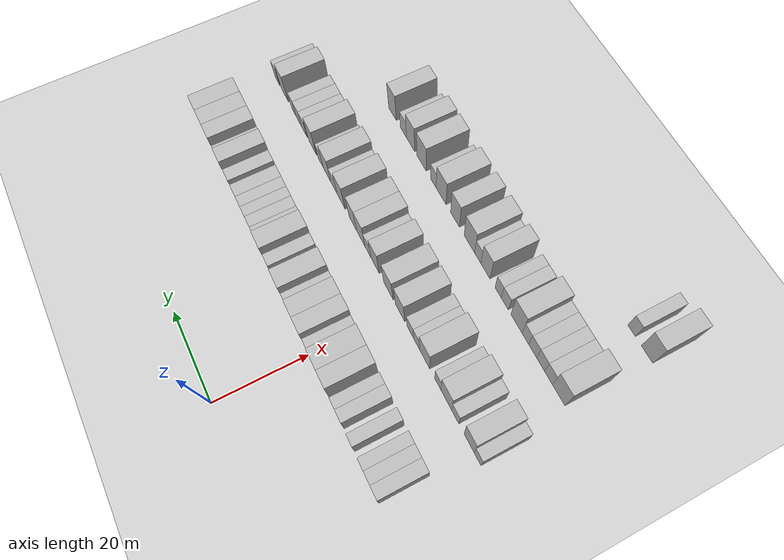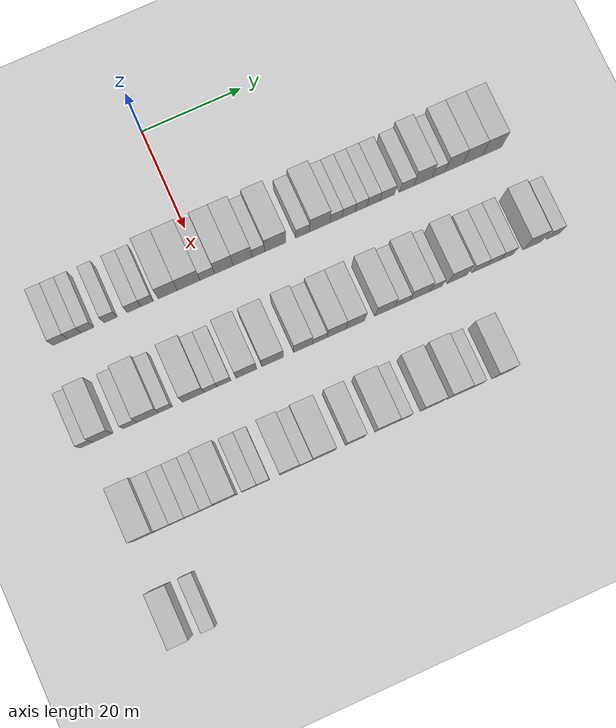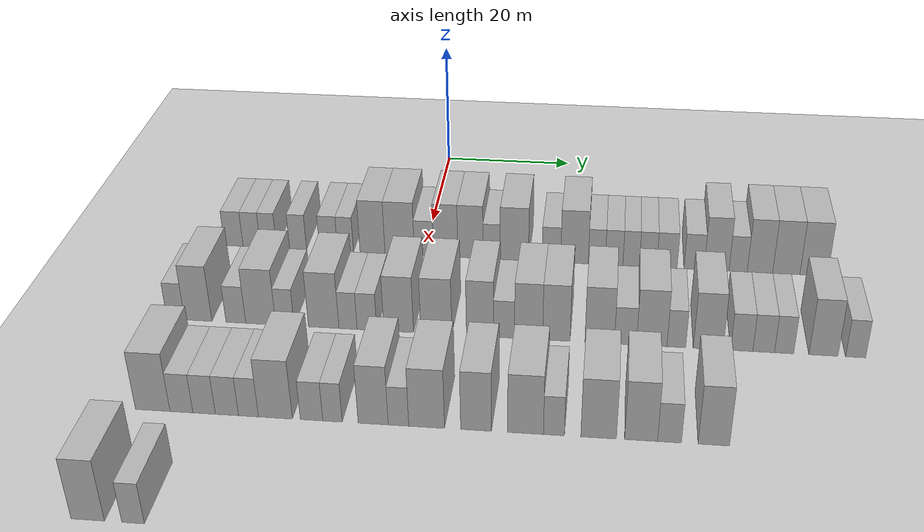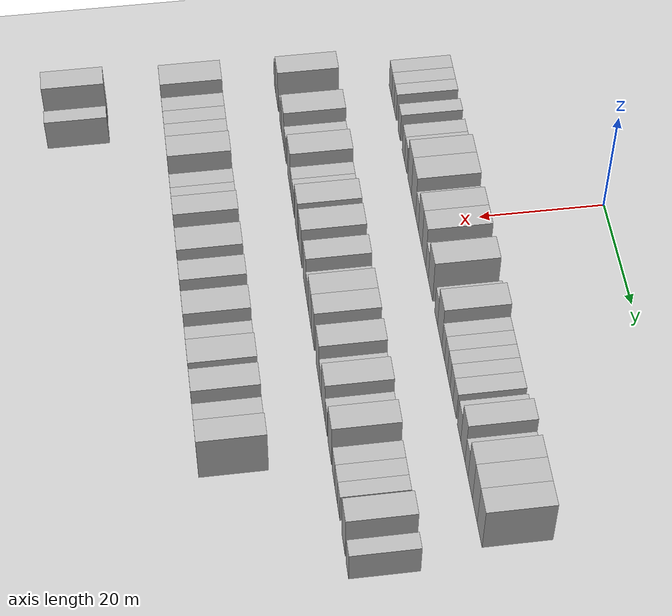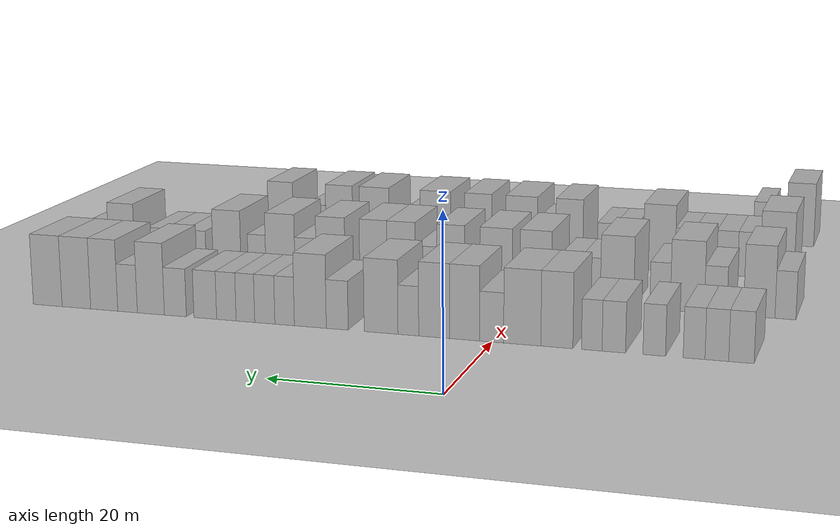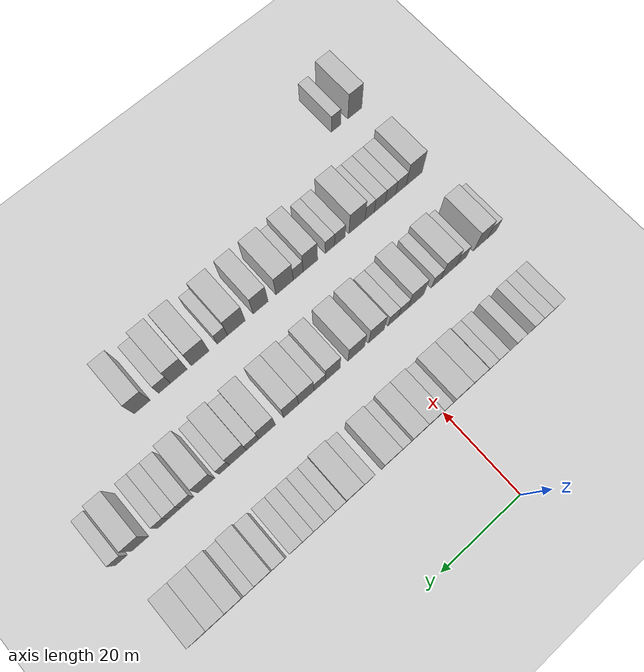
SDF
<sdf version="1.6">
 <world name="default">
  <include><name>ground_plane_1</name><uri>model://HANNAS_ground_plane</uri></include>
  <model name="building_84">
   <static>1</static>
   <pose>25.0000 -28.8090 0 0.000000 0.000000 0.000000</pose>
   <link name="link">
    <pose>0 0 3.00 0 0 0</pose>
    <collision name="collision"><geometry><box><size>10.0000 2.8330 6.0000</size></box></geometry></collision>
    <visual name="visual">
     <cast_shadows>0</cast_shadows>
     <geometry><box><size>10.0000 2.8330 6.0000</size></box></geometry>
     <material>
      <script>
       <uri>model://HANNAS_wall/materials/scripts</uri>
       <uri>model://HANNAS_wall/materials/textures</uri>
       <name>vrc/HANNAS_wall</name>
      </script>
     </material>
    </visual>
   </link>
  </model>
  <model name="building_85">
   <static>1</static>
   <pose>25.0000 -26.0615 0 0.000000 0.000000 0.000000</pose>
   <link name="link">
    <pose>0 0 3.00 0 0 0</pose>
    <collision name="collision"><geometry><box><size>10.0000 2.6622 6.0000</size></box></geometry></collision>
    <visual name="visual">
     <cast_shadows>0</cast_shadows>
     <geometry><box><size>10.0000 2.6622 6.0000</size></box></geometry>
     <material>
      <script>
       <uri>model://HANNAS_wall/materials/scripts</uri>
       <uri>model://HANNAS_wall/materials/textures</uri>
       <name>vrc/HANNAS_wall</name>
      </script>
     </material>
    </visual>
   </link>
  </model>
  <model name="building_86">
   <static>1</static>
   <pose>25.0000 -23.4955 0 0.000000 0.000000 0.000000</pose>
   <link name="link">
    <pose>0 0 3.00 0 0 0</pose>
    <collision name="collision"><geometry><box><size>10.0000 2.4699 6.0000</size></box></geometry></collision>
    <visual name="visual">
     <cast_shadows>0</cast_shadows>
     <geometry><box><size>10.0000 2.4699 6.0000</size></box></geometry>
     <material>
      <script>
       <uri>model://HANNAS_wall/materials/scripts</uri>
       <uri>model://HANNAS_wall/materials/textures</uri>
       <name>vrc/HANNAS_wall</name>
      </script>
     </material>
    </visual>
   </link>
  </model>
  <model name="building_87">
   <static>1</static>
   <pose>25.0000 -18.9709 0 0.000000 0.000000 0.000000</pose>
   <link name="link">
    <pose>0 0 3.00 0 0 0</pose>
    <collision name="collision"><geometry><box><size>10.0000 2.5793 6.0000</size></box></geometry></collision>
    <visual name="visual">
     <cast_shadows>0</cast_shadows>
     <geometry><box><size>10.0000 2.5793 6.0000</size></box></geometry>
     <material>
      <script>
       <uri>model://HANNAS_wall/materials/scripts</uri>
       <uri>model://HANNAS_wall/materials/textures</uri>
       <name>vrc/HANNAS_wall</name>
      </script>
     </material>
    </visual>
   </link>
  </model>
  <model name="building_88">
   <static>1</static>
   <pose>25.0000 -14.3257 0 0.000000 0.000000 0.000000</pose>
   <link name="link">
    <pose>0 0 3.00 0 0 0</pose>
    <collision name="collision"><geometry><box><size>10.0000 2.7111 6.0000</size></box></geometry></collision>
    <visual name="visual">
     <cast_shadows>0</cast_shadows>
     <geometry><box><size>10.0000 2.7111 6.0000</size></box></geometry>
     <material>
      <script>
       <uri>model://HANNAS_wall/materials/scripts</uri>
       <uri>model://HANNAS_wall/materials/textures</uri>
       <name>vrc/HANNAS_wall</name>
      </script>
     </material>
    </visual>
   </link>
  </model>
  <model name="building_89">
   <static>1</static>
   <pose>25.0000 -11.7657 0 0.000000 0.000000 0.000000</pose>
   <link name="link">
    <pose>0 0 3.00 0 0 0</pose>
    <collision name="collision"><geometry><box><size>10.0000 2.4090 6.0000</size></box></geometry></collision>
    <visual name="visual">
     <cast_shadows>0</cast_shadows>
     <geometry><box><size>10.0000 2.4090 6.0000</size></box></geometry>
     <material>
      <script>
       <uri>model://HANNAS_wall/materials/scripts</uri>
       <uri>model://HANNAS_wall/materials/textures</uri>
       <name>vrc/HANNAS_wall</name>
      </script>
     </material>
    </visual>
   </link>
  </model>
  <model name="building_90">
   <static>1</static>
   <pose>25.0000 -7.6754 0 0.000000 0.000000 0.000000</pose>
   <link name="link">
    <pose>0 0 4.50 0 0 0</pose>
    <collision name="collision"><geometry><box><size>10.0000 3.7716 9.0000</size></box></geometry></collision>
    <visual name="visual">
     <cast_shadows>0</cast_shadows>
     <geometry><box><size>10.0000 3.7716 9.0000</size></box></geometry>
     <material>
      <script>
       <uri>model://HANNAS_wall/materials/scripts</uri>
       <uri>model://HANNAS_wall/materials/textures</uri>
       <name>vrc/HANNAS_wall</name>
      </script>
     </material>
    </visual>
   </link>
  </model>
  <model name="building_91">
   <static>1</static>
   <pose>25.0000 -3.5807 0 0.000000 0.000000 0.000000</pose>
   <link name="link">
    <pose>0 0 4.50 0 0 0</pose>
    <collision name="collision"><geometry><box><size>10.0000 4.4180 9.0000</size></box></geometry></collision>
    <visual name="visual">
     <cast_shadows>0</cast_shadows>
     <geometry><box><size>10.0000 4.4180 9.0000</size></box></geometry>
     <material>
      <script>
       <uri>model://HANNAS_wall/materials/scripts</uri>
       <uri>model://HANNAS_wall/materials/textures</uri>
       <name>vrc/HANNAS_wall</name>
      </script>
     </material>
    </visual>
   </link>
  </model>
  <model name="building_92">
   <static>1</static>
   <pose>25.0000 0.0661 0 0.000000 0.000000 0.000000</pose>
   <link name="link">
    <pose>0 0 3.00 0 0 0</pose>
    <collision name="collision"><geometry><box><size>10.0000 2.8755 6.0000</size></box></geometry></collision>
    <visual name="visual">
     <cast_shadows>0</cast_shadows>
     <geometry><box><size>10.0000 2.8755 6.0000</size></box></geometry>
     <material>
      <script>
       <uri>model://HANNAS_wall/materials/scripts</uri>
       <uri>model://HANNAS_wall/materials/textures</uri>
       <name>vrc/HANNAS_wall</name>
      </script>
     </material>
    </visual>
   </link>
  </model>
  <model name="building_93">
   <static>1</static>
   <pose>25.0000 3.3241 0 0.000000 0.000000 0.000000</pose>
   <link name="link">
    <pose>0 0 4.50 0 0 0</pose>
    <collision name="collision"><geometry><box><size>10.0000 3.6405 9.0000</size></box></geometry></collision>
    <visual name="visual">
     <cast_shadows>0</cast_shadows>
     <geometry><box><size>10.0000 3.6405 9.0000</size></box></geometry>
     <material>
      <script>
       <uri>model://HANNAS_wall/materials/scripts</uri>
       <uri>model://HANNAS_wall/materials/textures</uri>
       <name>vrc/HANNAS_wall</name>
      </script>
     </material>
    </visual>
   </link>
  </model>
  <model name="building_94">
   <static>1</static>
   <pose>25.0000 7.0302 0 0.000000 0.000000 0.000000</pose>
   <link name="link">
    <pose>0 0 4.50 0 0 0</pose>
    <collision name="collision"><geometry><box><size>10.0000 3.7717 9.0000</size></box></geometry></collision>
    <visual name="visual">
     <cast_shadows>0</cast_shadows>
     <geometry><box><size>10.0000 3.7717 9.0000</size></box></geometry>
     <material>
      <script>
       <uri>model://HANNAS_wall/materials/scripts</uri>
       <uri>model://HANNAS_wall/materials/textures</uri>
       <name>vrc/HANNAS_wall</name>
      </script>
     </material>
    </visual>
   </link>
  </model>
  <model name="building_95">
   <static>1</static>
   <pose>25.0000 10.1906 0 0.000000 0.000000 0.000000</pose>
   <link name="link">
    <pose>0 0 3.00 0 0 0</pose>
    <collision name="collision"><geometry><box><size>10.0000 2.5492 6.0000</size></box></geometry></collision>
    <visual name="visual">
     <cast_shadows>0</cast_shadows>
     <geometry><box><size>10.0000 2.5492 6.0000</size></box></geometry>
     <material>
      <script>
       <uri>model://HANNAS_wall/materials/scripts</uri>
       <uri>model://HANNAS_wall/materials/textures</uri>
       <name>vrc/HANNAS_wall</name>
      </script>
     </material>
    </visual>
   </link>
  </model>
  <model name="building_96">
   <static>1</static>
   <pose>25.0000 13.5642 0 0.000000 0.000000 0.000000</pose>
   <link name="link">
    <pose>0 0 4.50 0 0 0</pose>
    <collision name="collision"><geometry><box><size>10.0000 4.1981 9.0000</size></box></geometry></collision>
    <visual name="visual">
     <cast_shadows>0</cast_shadows>
     <geometry><box><size>10.0000 4.1981 9.0000</size></box></geometry>
     <material>
      <script>
       <uri>model://HANNAS_wall/materials/scripts</uri>
       <uri>model://HANNAS_wall/materials/textures</uri>
       <name>vrc/HANNAS_wall</name>
      </script>
     </material>
    </visual>
   </link>
  </model>
  <model name="building_97">
   <static>1</static>
   <pose>25.0000 19.0391 0 0.000000 0.000000 0.000000</pose>
   <link name="link">
    <pose>0 0 3.00 0 0 0</pose>
    <collision name="collision"><geometry><box><size>10.0000 2.7515 6.0000</size></box></geometry></collision>
    <visual name="visual">
     <cast_shadows>0</cast_shadows>
     <geometry><box><size>10.0000 2.7515 6.0000</size></box></geometry>
     <material>
      <script>
       <uri>model://HANNAS_wall/materials/scripts</uri>
       <uri>model://HANNAS_wall/materials/textures</uri>
       <name>vrc/HANNAS_wall</name>
      </script>
     </material>
    </visual>
   </link>
  </model>
  <model name="building_98">
   <static>1</static>
   <pose>25.0000 22.4402 0 0.000000 0.000000 0.000000</pose>
   <link name="link">
    <pose>0 0 4.50 0 0 0</pose>
    <collision name="collision"><geometry><box><size>10.0000 4.0507 9.0000</size></box></geometry></collision>
    <visual name="visual">
     <cast_shadows>0</cast_shadows>
     <geometry><box><size>10.0000 4.0507 9.0000</size></box></geometry>
     <material>
      <script>
       <uri>model://HANNAS_wall/materials/scripts</uri>
       <uri>model://HANNAS_wall/materials/textures</uri>
       <name>vrc/HANNAS_wall</name>
      </script>
     </material>
    </visual>
   </link>
  </model>
  <model name="building_99">
   <static>1</static>
   <pose>25.0000 25.7136 0 0.000000 0.000000 0.000000</pose>
   <link name="link">
    <pose>0 0 3.00 0 0 0</pose>
    <collision name="collision"><geometry><box><size>10.0000 2.4961 6.0000</size></box></geometry></collision>
    <visual name="visual">
     <cast_shadows>0</cast_shadows>
     <geometry><box><size>10.0000 2.4961 6.0000</size></box></geometry>
     <material>
      <script>
       <uri>model://HANNAS_wall/materials/scripts</uri>
       <uri>model://HANNAS_wall/materials/textures</uri>
       <name>vrc/HANNAS_wall</name>
      </script>
     </material>
    </visual>
   </link>
  </model>
  <model name="building_100">
   <static>1</static>
   <pose>25.0000 28.2555 0 0.000000 0.000000 0.000000</pose>
   <link name="link">
    <pose>0 0 3.00 0 0 0</pose>
    <collision name="collision"><geometry><box><size>10.0000 2.5877 6.0000</size></box></geometry></collision>
    <visual name="visual">
     <cast_shadows>0</cast_shadows>
     <geometry><box><size>10.0000 2.5877 6.0000</size></box></geometry>
     <material>
      <script>
       <uri>model://HANNAS_wall/materials/scripts</uri>
       <uri>model://HANNAS_wall/materials/textures</uri>
       <name>vrc/HANNAS_wall</name>
      </script>
     </material>
    </visual>
   </link>
  </model>
  <model name="building_101">
   <static>1</static>
   <pose>25.0000 30.7567 0 0.000000 0.000000 0.000000</pose>
   <link name="link">
    <pose>0 0 3.00 0 0 0</pose>
    <collision name="collision"><geometry><box><size>10.0000 2.4148 6.0000</size></box></geometry></collision>
    <visual name="visual">
     <cast_shadows>0</cast_shadows>
     <geometry><box><size>10.0000 2.4148 6.0000</size></box></geometry>
     <material>
      <script>
       <uri>model://HANNAS_wall/materials/scripts</uri>
       <uri>model://HANNAS_wall/materials/textures</uri>
       <name>vrc/HANNAS_wall</name>
      </script>
     </material>
    </visual>
   </link>
  </model>
  <model name="building_102">
   <static>1</static>
   <pose>25.0000 33.2324 0 0.000000 0.000000 0.000000</pose>
   <link name="link">
    <pose>0 0 3.00 0 0 0</pose>
    <collision name="collision"><geometry><box><size>10.0000 2.5365 6.0000</size></box></geometry></collision>
    <visual name="visual">
     <cast_shadows>0</cast_shadows>
     <geometry><box><size>10.0000 2.5365 6.0000</size></box></geometry>
     <material>
      <script>
       <uri>model://HANNAS_wall/materials/scripts</uri>
       <uri>model://HANNAS_wall/materials/textures</uri>
       <name>vrc/HANNAS_wall</name>
      </script>
     </material>
    </visual>
   </link>
  </model>
  <model name="building_103">
   <static>1</static>
   <pose>25.0000 35.9868 0 0.000000 0.000000 0.000000</pose>
   <link name="link">
    <pose>0 0 3.00 0 0 0</pose>
    <collision name="collision"><geometry><box><size>10.0000 2.9724 6.0000</size></box></geometry></collision>
    <visual name="visual">
     <cast_shadows>0</cast_shadows>
     <geometry><box><size>10.0000 2.9724 6.0000</size></box></geometry>
     <material>
      <script>
       <uri>model://HANNAS_wall/materials/scripts</uri>
       <uri>model://HANNAS_wall/materials/textures</uri>
       <name>vrc/HANNAS_wall</name>
      </script>
     </material>
    </visual>
   </link>
  </model>
  <model name="building_104">
   <static>1</static>
   <pose>25.0000 39.9275 0 0.000000 0.000000 0.000000</pose>
   <link name="link">
    <pose>0 0 3.00 0 0 0</pose>
    <collision name="collision"><geometry><box><size>10.0000 2.9089 6.0000</size></box></geometry></collision>
    <visual name="visual">
     <cast_shadows>0</cast_shadows>
     <geometry><box><size>10.0000 2.9089 6.0000</size></box></geometry>
     <material>
      <script>
       <uri>model://HANNAS_wall/materials/scripts</uri>
       <uri>model://HANNAS_wall/materials/textures</uri>
       <name>vrc/HANNAS_wall</name>
      </script>
     </material>
    </visual>
   </link>
  </model>
  <model name="building_105">
   <static>1</static>
   <pose>25.0000 43.1871 0 0.000000 0.000000 0.000000</pose>
   <link name="link">
    <pose>0 0 4.50 0 0 0</pose>
    <collision name="collision"><geometry><box><size>10.0000 3.6104 9.0000</size></box></geometry></collision>
    <visual name="visual">
     <cast_shadows>0</cast_shadows>
     <geometry><box><size>10.0000 3.6104 9.0000</size></box></geometry>
     <material>
      <script>
       <uri>model://HANNAS_wall/materials/scripts</uri>
       <uri>model://HANNAS_wall/materials/textures</uri>
       <name>vrc/HANNAS_wall</name>
      </script>
     </material>
    </visual>
   </link>
  </model>
  <model name="building_106">
   <static>1</static>
   <pose>25.0000 46.3086 0 0.000000 0.000000 0.000000</pose>
   <link name="link">
    <pose>0 0 3.00 0 0 0</pose>
    <collision name="collision"><geometry><box><size>10.0000 2.6326 6.0000</size></box></geometry></collision>
    <visual name="visual">
     <cast_shadows>0</cast_shadows>
     <geometry><box><size>10.0000 2.6326 6.0000</size></box></geometry>
     <material>
      <script>
       <uri>model://HANNAS_wall/materials/scripts</uri>
       <uri>model://HANNAS_wall/materials/textures</uri>
       <name>vrc/HANNAS_wall</name>
      </script>
     </material>
    </visual>
   </link>
  </model>
  <model name="building_107">
   <static>1</static>
   <pose>25.0000 49.4551 0 0.000000 0.000000 0.000000</pose>
   <link name="link">
    <pose>0 0 4.50 0 0 0</pose>
    <collision name="collision"><geometry><box><size>10.0000 3.6605 9.0000</size></box></geometry></collision>
    <visual name="visual">
     <cast_shadows>0</cast_shadows>
     <geometry><box><size>10.0000 3.6605 9.0000</size></box></geometry>
     <material>
      <script>
       <uri>model://HANNAS_wall/materials/scripts</uri>
       <uri>model://HANNAS_wall/materials/textures</uri>
       <name>vrc/HANNAS_wall</name>
      </script>
     </material>
    </visual>
   </link>
  </model>
  <model name="building_108">
   <static>1</static>
   <pose>25.0000 53.2404 0 0.000000 0.000000 0.000000</pose>
   <link name="link">
    <pose>0 0 4.50 0 0 0</pose>
    <collision name="collision"><geometry><box><size>10.0000 3.9102 9.0000</size></box></geometry></collision>
    <visual name="visual">
     <cast_shadows>0</cast_shadows>
     <geometry><box><size>10.0000 3.9102 9.0000</size></box></geometry>
     <material>
      <script>
       <uri>model://HANNAS_wall/materials/scripts</uri>
       <uri>model://HANNAS_wall/materials/textures</uri>
       <name>vrc/HANNAS_wall</name>
      </script>
     </material>
    </visual>
   </link>
  </model>
  <model name="building_109">
   <static>1</static>
   <pose>25.0000 57.1777 0 0.000000 0.000000 0.000000</pose>
   <link name="link">
    <pose>0 0 4.50 0 0 0</pose>
    <collision name="collision"><geometry><box><size>10.0000 3.9643 9.0000</size></box></geometry></collision>
    <visual name="visual">
     <cast_shadows>0</cast_shadows>
     <geometry><box><size>10.0000 3.9643 9.0000</size></box></geometry>
     <material>
      <script>
       <uri>model://HANNAS_wall/materials/scripts</uri>
       <uri>model://HANNAS_wall/materials/textures</uri>
       <name>vrc/HANNAS_wall</name>
      </script>
     </material>
    </visual>
   </link>
  </model>
  <model name="building_254">
   <static>1</static>
   <pose>44.0000 -31.6914 0 0.000000 0.000000 0.000000</pose>
   <link name="link">
    <pose>0 0 3.00 0 0 0</pose>
    <collision name="collision"><geometry><box><size>10.0000 2.5079 6.0000</size></box></geometry></collision>
    <visual name="visual">
     <cast_shadows>0</cast_shadows>
     <geometry><box><size>10.0000 2.5079 6.0000</size></box></geometry>
     <material>
      <script>
       <uri>model://HANNAS_wall/materials/scripts</uri>
       <uri>model://HANNAS_wall/materials/textures</uri>
       <name>vrc/HANNAS_wall</name>
      </script>
     </material>
    </visual>
   </link>
  </model>
  <model name="building_255">
   <static>1</static>
   <pose>44.0000 -28.5238 0 0.000000 0.000000 0.000000</pose>
   <link name="link">
    <pose>0 0 4.50 0 0 0</pose>
    <collision name="collision"><geometry><box><size>10.0000 3.8273 9.0000</size></box></geometry></collision>
    <visual name="visual">
     <cast_shadows>0</cast_shadows>
     <geometry><box><size>10.0000 3.8273 9.0000</size></box></geometry>
     <material>
      <script>
       <uri>model://HANNAS_wall/materials/scripts</uri>
       <uri>model://HANNAS_wall/materials/textures</uri>
       <name>vrc/HANNAS_wall</name>
      </script>
     </material>
    </visual>
   </link>
  </model>
  <model name="building_256">
   <static>1</static>
   <pose>44.0000 -23.2262 0 0.000000 0.000000 0.000000</pose>
   <link name="link">
    <pose>0 0 3.00 0 0 0</pose>
    <collision name="collision"><geometry><box><size>10.0000 2.7680 6.0000</size></box></geometry></collision>
    <visual name="visual">
     <cast_shadows>0</cast_shadows>
     <geometry><box><size>10.0000 2.7680 6.0000</size></box></geometry>
     <material>
      <script>
       <uri>model://HANNAS_wall/materials/scripts</uri>
       <uri>model://HANNAS_wall/materials/textures</uri>
       <name>vrc/HANNAS_wall</name>
      </script>
     </material>
    </visual>
   </link>
  </model>
  <model name="building_257">
   <static>1</static>
   <pose>44.0000 -19.7405 0 0.000000 0.000000 0.000000</pose>
   <link name="link">
    <pose>0 0 4.50 0 0 0</pose>
    <collision name="collision"><geometry><box><size>10.0000 4.2033 9.0000</size></box></geometry></collision>
    <visual name="visual">
     <cast_shadows>0</cast_shadows>
     <geometry><box><size>10.0000 4.2033 9.0000</size></box></geometry>
     <material>
      <script>
       <uri>model://HANNAS_wall/materials/scripts</uri>
       <uri>model://HANNAS_wall/materials/textures</uri>
       <name>vrc/HANNAS_wall</name>
      </script>
     </material>
    </visual>
   </link>
  </model>
  <model name="building_258">
   <static>1</static>
   <pose>44.0000 -16.3598 0 0.000000 0.000000 0.000000</pose>
   <link name="link">
    <pose>0 0 3.00 0 0 0</pose>
    <collision name="collision"><geometry><box><size>10.0000 2.5581 6.0000</size></box></geometry></collision>
    <visual name="visual">
     <cast_shadows>0</cast_shadows>
     <geometry><box><size>10.0000 2.5581 6.0000</size></box></geometry>
     <material>
      <script>
       <uri>model://HANNAS_wall/materials/scripts</uri>
       <uri>model://HANNAS_wall/materials/textures</uri>
       <name>vrc/HANNAS_wall</name>
      </script>
     </material>
    </visual>
   </link>
  </model>
  <model name="building_259">
   <static>1</static>
   <pose>44.0000 -10.9710 0 0.000000 0.000000 0.000000</pose>
   <link name="link">
    <pose>0 0 4.50 0 0 0</pose>
    <collision name="collision"><geometry><box><size>10.0000 4.2196 9.0000</size></box></geometry></collision>
    <visual name="visual">
     <cast_shadows>0</cast_shadows>
     <geometry><box><size>10.0000 4.2196 9.0000</size></box></geometry>
     <material>
      <script>
       <uri>model://HANNAS_wall/materials/scripts</uri>
       <uri>model://HANNAS_wall/materials/textures</uri>
       <name>vrc/HANNAS_wall</name>
      </script>
     </material>
    </visual>
   </link>
  </model>
  <model name="building_260">
   <static>1</static>
   <pose>44.0000 -7.6027 0 0.000000 0.000000 0.000000</pose>
   <link name="link">
    <pose>0 0 3.00 0 0 0</pose>
    <collision name="collision"><geometry><box><size>10.0000 2.5170 6.0000</size></box></geometry></collision>
    <visual name="visual">
     <cast_shadows>0</cast_shadows>
     <geometry><box><size>10.0000 2.5170 6.0000</size></box></geometry>
     <material>
      <script>
       <uri>model://HANNAS_wall/materials/scripts</uri>
       <uri>model://HANNAS_wall/materials/textures</uri>
       <name>vrc/HANNAS_wall</name>
      </script>
     </material>
    </visual>
   </link>
  </model>
  <model name="building_261">
   <static>1</static>
   <pose>44.0000 -4.9911 0 0.000000 0.000000 0.000000</pose>
   <link name="link">
    <pose>0 0 3.00 0 0 0</pose>
    <collision name="collision"><geometry><box><size>10.0000 2.7061 6.0000</size></box></geometry></collision>
    <visual name="visual">
     <cast_shadows>0</cast_shadows>
     <geometry><box><size>10.0000 2.7061 6.0000</size></box></geometry>
     <material>
      <script>
       <uri>model://HANNAS_wall/materials/scripts</uri>
       <uri>model://HANNAS_wall/materials/textures</uri>
       <name>vrc/HANNAS_wall</name>
      </script>
     </material>
    </visual>
   </link>
  </model>
  <model name="building_262">
   <static>1</static>
   <pose>44.0000 -0.6071 0 0.000000 0.000000 0.000000</pose>
   <link name="link">
    <pose>0 0 4.50 0 0 0</pose>
    <collision name="collision"><geometry><box><size>10.0000 4.0620 9.0000</size></box></geometry></collision>
    <visual name="visual">
     <cast_shadows>0</cast_shadows>
     <geometry><box><size>10.0000 4.0620 9.0000</size></box></geometry>
     <material>
      <script>
       <uri>model://HANNAS_wall/materials/scripts</uri>
       <uri>model://HANNAS_wall/materials/textures</uri>
       <name>vrc/HANNAS_wall</name>
      </script>
     </material>
    </visual>
   </link>
  </model>
  <model name="building_263">
   <static>1</static>
   <pose>44.0000 4.5474 0 0.000000 0.000000 0.000000</pose>
   <link name="link">
    <pose>0 0 4.50 0 0 0</pose>
    <collision name="collision"><geometry><box><size>10.0000 4.2470 9.0000</size></box></geometry></collision>
    <visual name="visual">
     <cast_shadows>0</cast_shadows>
     <geometry><box><size>10.0000 4.2470 9.0000</size></box></geometry>
     <material>
      <script>
       <uri>model://HANNAS_wall/materials/scripts</uri>
       <uri>model://HANNAS_wall/materials/textures</uri>
       <name>vrc/HANNAS_wall</name>
      </script>
     </material>
    </visual>
   </link>
  </model>
  <model name="building_264">
   <static>1</static>
   <pose>44.0000 10.5093 0 0.000000 0.000000 0.000000</pose>
   <link name="link">
    <pose>0 0 4.50 0 0 0</pose>
    <collision name="collision"><geometry><box><size>10.0000 3.6768 9.0000</size></box></geometry></collision>
    <visual name="visual">
     <cast_shadows>0</cast_shadows>
     <geometry><box><size>10.0000 3.6768 9.0000</size></box></geometry>
     <material>
      <script>
       <uri>model://HANNAS_wall/materials/scripts</uri>
       <uri>model://HANNAS_wall/materials/textures</uri>
       <name>vrc/HANNAS_wall</name>
      </script>
     </material>
    </visual>
   </link>
  </model>
  <model name="building_265">
   <static>1</static>
   <pose>44.0000 13.7804 0 0.000000 0.000000 0.000000</pose>
   <link name="link">
    <pose>0 0 3.00 0 0 0</pose>
    <collision name="collision"><geometry><box><size>10.0000 2.8653 6.0000</size></box></geometry></collision>
    <visual name="visual">
     <cast_shadows>0</cast_shadows>
     <geometry><box><size>10.0000 2.8653 6.0000</size></box></geometry>
     <material>
      <script>
       <uri>model://HANNAS_wall/materials/scripts</uri>
       <uri>model://HANNAS_wall/materials/textures</uri>
       <name>vrc/HANNAS_wall</name>
      </script>
     </material>
    </visual>
   </link>
  </model>
  <model name="building_266">
   <static>1</static>
   <pose>44.0000 17.1089 0 0.000000 0.000000 0.000000</pose>
   <link name="link">
    <pose>0 0 4.50 0 0 0</pose>
    <collision name="collision"><geometry><box><size>10.0000 3.7916 9.0000</size></box></geometry></collision>
    <visual name="visual">
     <cast_shadows>0</cast_shadows>
     <geometry><box><size>10.0000 3.7916 9.0000</size></box></geometry>
     <material>
      <script>
       <uri>model://HANNAS_wall/materials/scripts</uri>
       <uri>model://HANNAS_wall/materials/textures</uri>
       <name>vrc/HANNAS_wall</name>
      </script>
     </material>
    </visual>
   </link>
  </model>
  <model name="building_267">
   <static>1</static>
   <pose>44.0000 20.8496 0 0.000000 0.000000 0.000000</pose>
   <link name="link">
    <pose>0 0 4.50 0 0 0</pose>
    <collision name="collision"><geometry><box><size>10.0000 3.6898 9.0000</size></box></geometry></collision>
    <visual name="visual">
     <cast_shadows>0</cast_shadows>
     <geometry><box><size>10.0000 3.6898 9.0000</size></box></geometry>
     <material>
      <script>
       <uri>model://HANNAS_wall/materials/scripts</uri>
       <uri>model://HANNAS_wall/materials/textures</uri>
       <name>vrc/HANNAS_wall</name>
      </script>
     </material>
    </visual>
   </link>
  </model>
  <model name="building_268">
   <static>1</static>
   <pose>44.0000 26.6728 0 0.000000 0.000000 0.000000</pose>
   <link name="link">
    <pose>0 0 4.50 0 0 0</pose>
    <collision name="collision"><geometry><box><size>10.0000 3.9567 9.0000</size></box></geometry></collision>
    <visual name="visual">
     <cast_shadows>0</cast_shadows>
     <geometry><box><size>10.0000 3.9567 9.0000</size></box></geometry>
     <material>
      <script>
       <uri>model://HANNAS_wall/materials/scripts</uri>
       <uri>model://HANNAS_wall/materials/textures</uri>
       <name>vrc/HANNAS_wall</name>
      </script>
     </material>
    </visual>
   </link>
  </model>
  <model name="building_269">
   <static>1</static>
   <pose>44.0000 30.1289 0 0.000000 0.000000 0.000000</pose>
   <link name="link">
    <pose>0 0 3.00 0 0 0</pose>
    <collision name="collision"><geometry><box><size>10.0000 2.9555 6.0000</size></box></geometry></collision>
    <visual name="visual">
     <cast_shadows>0</cast_shadows>
     <geometry><box><size>10.0000 2.9555 6.0000</size></box></geometry>
     <material>
      <script>
       <uri>model://HANNAS_wall/materials/scripts</uri>
       <uri>model://HANNAS_wall/materials/textures</uri>
       <name>vrc/HANNAS_wall</name>
      </script>
     </material>
    </visual>
   </link>
  </model>
  <model name="building_270">
   <static>1</static>
   <pose>44.0000 33.6361 0 0.000000 0.000000 0.000000</pose>
   <link name="link">
    <pose>0 0 4.50 0 0 0</pose>
    <collision name="collision"><geometry><box><size>10.0000 4.0588 9.0000</size></box></geometry></collision>
    <visual name="visual">
     <cast_shadows>0</cast_shadows>
     <geometry><box><size>10.0000 4.0588 9.0000</size></box></geometry>
     <material>
      <script>
       <uri>model://HANNAS_wall/materials/scripts</uri>
       <uri>model://HANNAS_wall/materials/textures</uri>
       <name>vrc/HANNAS_wall</name>
      </script>
     </material>
    </visual>
   </link>
  </model>
  <model name="building_271">
   <static>1</static>
   <pose>44.0000 36.9097 0 0.000000 0.000000 0.000000</pose>
   <link name="link">
    <pose>0 0 3.00 0 0 0</pose>
    <collision name="collision"><geometry><box><size>10.0000 2.4883 6.0000</size></box></geometry></collision>
    <visual name="visual">
     <cast_shadows>0</cast_shadows>
     <geometry><box><size>10.0000 2.4883 6.0000</size></box></geometry>
     <material>
      <script>
       <uri>model://HANNAS_wall/materials/scripts</uri>
       <uri>model://HANNAS_wall/materials/textures</uri>
       <name>vrc/HANNAS_wall</name>
      </script>
     </material>
    </visual>
   </link>
  </model>
  <model name="building_272">
   <static>1</static>
   <pose>44.0000 41.1242 0 0.000000 0.000000 0.000000</pose>
   <link name="link">
    <pose>0 0 4.50 0 0 0</pose>
    <collision name="collision"><geometry><box><size>10.0000 3.9406 9.0000</size></box></geometry></collision>
    <visual name="visual">
     <cast_shadows>0</cast_shadows>
     <geometry><box><size>10.0000 3.9406 9.0000</size></box></geometry>
     <material>
      <script>
       <uri>model://HANNAS_wall/materials/scripts</uri>
       <uri>model://HANNAS_wall/materials/textures</uri>
       <name>vrc/HANNAS_wall</name>
      </script>
     </material>
    </visual>
   </link>
  </model>
  <model name="building_273">
   <static>1</static>
   <pose>44.0000 45.5580 0 0.000000 0.000000 0.000000</pose>
   <link name="link">
    <pose>0 0 3.00 0 0 0</pose>
    <collision name="collision"><geometry><box><size>10.0000 2.9269 6.0000</size></box></geometry></collision>
    <visual name="visual">
     <cast_shadows>0</cast_shadows>
     <geometry><box><size>10.0000 2.9269 6.0000</size></box></geometry>
     <material>
      <script>
       <uri>model://HANNAS_wall/materials/scripts</uri>
       <uri>model://HANNAS_wall/materials/textures</uri>
       <name>vrc/HANNAS_wall</name>
      </script>
     </material>
    </visual>
   </link>
  </model>
  <model name="building_274">
   <static>1</static>
   <pose>44.0000 48.4474 0 0.000000 0.000000 0.000000</pose>
   <link name="link">
    <pose>0 0 3.00 0 0 0</pose>
    <collision name="collision"><geometry><box><size>10.0000 2.8519 6.0000</size></box></geometry></collision>
    <visual name="visual">
     <cast_shadows>0</cast_shadows>
     <geometry><box><size>10.0000 2.8519 6.0000</size></box></geometry>
     <material>
      <script>
       <uri>model://HANNAS_wall/materials/scripts</uri>
       <uri>model://HANNAS_wall/materials/textures</uri>
       <name>vrc/HANNAS_wall</name>
      </script>
     </material>
    </visual>
   </link>
  </model>
  <model name="building_275">
   <static>1</static>
   <pose>44.0000 51.1332 0 0.000000 0.000000 0.000000</pose>
   <link name="link">
    <pose>0 0 3.00 0 0 0</pose>
    <collision name="collision"><geometry><box><size>10.0000 2.5199 6.0000</size></box></geometry></collision>
    <visual name="visual">
     <cast_shadows>0</cast_shadows>
     <geometry><box><size>10.0000 2.5199 6.0000</size></box></geometry>
     <material>
      <script>
       <uri>model://HANNAS_wall/materials/scripts</uri>
       <uri>model://HANNAS_wall/materials/textures</uri>
       <name>vrc/HANNAS_wall</name>
      </script>
     </material>
    </visual>
   </link>
  </model>
  <model name="building_276">
   <static>1</static>
   <pose>44.0000 56.2849 0 0.000000 0.000000 0.000000</pose>
   <link name="link">
    <pose>0 0 4.50 0 0 0</pose>
    <collision name="collision"><geometry><box><size>10.0000 3.7835 9.0000</size></box></geometry></collision>
    <visual name="visual">
     <cast_shadows>0</cast_shadows>
     <geometry><box><size>10.0000 3.7835 9.0000</size></box></geometry>
     <material>
      <script>
       <uri>model://HANNAS_wall/materials/scripts</uri>
       <uri>model://HANNAS_wall/materials/textures</uri>
       <name>vrc/HANNAS_wall</name>
      </script>
     </material>
    </visual>
   </link>
  </model>
  <model name="building_277">
   <static>1</static>
   <pose>44.0000 60.4785 0 0.000000 0.000000 0.000000</pose>
   <link name="link">
    <pose>0 0 3.00 0 0 0</pose>
    <collision name="collision"><geometry><box><size>10.0000 2.6036 6.0000</size></box></geometry></collision>
    <visual name="visual">
     <cast_shadows>0</cast_shadows>
     <geometry><box><size>10.0000 2.6036 6.0000</size></box></geometry>
     <material>
      <script>
       <uri>model://HANNAS_wall/materials/scripts</uri>
       <uri>model://HANNAS_wall/materials/textures</uri>
       <name>vrc/HANNAS_wall</name>
      </script>
     </material>
    </visual>
   </link>
  </model>
  <model name="building_436">
   <static>1</static>
   <pose>63.0000 -28.5884 0 0.000000 0.000000 0.000000</pose>
   <link name="link">
    <pose>0 0 4.50 0 0 0</pose>
    <collision name="collision"><geometry><box><size>10.0000 4.4267 9.0000</size></box></geometry></collision>
    <visual name="visual">
     <cast_shadows>0</cast_shadows>
     <geometry><box><size>10.0000 4.4267 9.0000</size></box></geometry>
     <material>
      <script>
       <uri>model://HANNAS_wall/materials/scripts</uri>
       <uri>model://HANNAS_wall/materials/textures</uri>
       <name>vrc/HANNAS_wall</name>
      </script>
     </material>
    </visual>
   </link>
  </model>
  <model name="building_437">
   <static>1</static>
   <pose>63.0000 -24.9078 0 0.000000 0.000000 0.000000</pose>
   <link name="link">
    <pose>0 0 3.00 0 0 0</pose>
    <collision name="collision"><geometry><box><size>10.0000 2.9345 6.0000</size></box></geometry></collision>
    <visual name="visual">
     <cast_shadows>0</cast_shadows>
     <geometry><box><size>10.0000 2.9345 6.0000</size></box></geometry>
     <material>
      <script>
       <uri>model://HANNAS_wall/materials/scripts</uri>
       <uri>model://HANNAS_wall/materials/textures</uri>
       <name>vrc/HANNAS_wall</name>
      </script>
     </material>
    </visual>
   </link>
  </model>
  <model name="building_438">
   <static>1</static>
   <pose>63.0000 -22.0087 0 0.000000 0.000000 0.000000</pose>
   <link name="link">
    <pose>0 0 3.00 0 0 0</pose>
    <collision name="collision"><geometry><box><size>10.0000 2.8638 6.0000</size></box></geometry></collision>
    <visual name="visual">
     <cast_shadows>0</cast_shadows>
     <geometry><box><size>10.0000 2.8638 6.0000</size></box></geometry>
     <material>
      <script>
       <uri>model://HANNAS_wall/materials/scripts</uri>
       <uri>model://HANNAS_wall/materials/textures</uri>
       <name>vrc/HANNAS_wall</name>
      </script>
     </material>
    </visual>
   </link>
  </model>
  <model name="building_439">
   <static>1</static>
   <pose>63.0000 -19.1057 0 0.000000 0.000000 0.000000</pose>
   <link name="link">
    <pose>0 0 3.00 0 0 0</pose>
    <collision name="collision"><geometry><box><size>10.0000 2.9422 6.0000</size></box></geometry></collision>
    <visual name="visual">
     <cast_shadows>0</cast_shadows>
     <geometry><box><size>10.0000 2.9422 6.0000</size></box></geometry>
     <material>
      <script>
       <uri>model://HANNAS_wall/materials/scripts</uri>
       <uri>model://HANNAS_wall/materials/textures</uri>
       <name>vrc/HANNAS_wall</name>
      </script>
     </material>
    </visual>
   </link>
  </model>
  <model name="building_440">
   <static>1</static>
   <pose>63.0000 -16.3711 0 0.000000 0.000000 0.000000</pose>
   <link name="link">
    <pose>0 0 3.00 0 0 0</pose>
    <collision name="collision"><geometry><box><size>10.0000 2.5270 6.0000</size></box></geometry></collision>
    <visual name="visual">
     <cast_shadows>0</cast_shadows>
     <geometry><box><size>10.0000 2.5270 6.0000</size></box></geometry>
     <material>
      <script>
       <uri>model://HANNAS_wall/materials/scripts</uri>
       <uri>model://HANNAS_wall/materials/textures</uri>
       <name>vrc/HANNAS_wall</name>
      </script>
     </material>
    </visual>
   </link>
  </model>
  <model name="building_441">
   <static>1</static>
   <pose>63.0000 -12.9587 0 0.000000 0.000000 0.000000</pose>
   <link name="link">
    <pose>0 0 4.50 0 0 0</pose>
    <collision name="collision"><geometry><box><size>10.0000 4.2978 9.0000</size></box></geometry></collision>
    <visual name="visual">
     <cast_shadows>0</cast_shadows>
     <geometry><box><size>10.0000 4.2978 9.0000</size></box></geometry>
     <material>
      <script>
       <uri>model://HANNAS_wall/materials/scripts</uri>
       <uri>model://HANNAS_wall/materials/textures</uri>
       <name>vrc/HANNAS_wall</name>
      </script>
     </material>
    </visual>
   </link>
  </model>
  <model name="building_442">
   <static>1</static>
   <pose>63.0000 -8.3988 0 0.000000 0.000000 0.000000</pose>
   <link name="link">
    <pose>0 0 3.00 0 0 0</pose>
    <collision name="collision"><geometry><box><size>10.0000 2.8220 6.0000</size></box></geometry></collision>
    <visual name="visual">
     <cast_shadows>0</cast_shadows>
     <geometry><box><size>10.0000 2.8220 6.0000</size></box></geometry>
     <material>
      <script>
       <uri>model://HANNAS_wall/materials/scripts</uri>
       <uri>model://HANNAS_wall/materials/textures</uri>
       <name>vrc/HANNAS_wall</name>
      </script>
     </material>
    </visual>
   </link>
  </model>
  <model name="building_443">
   <static>1</static>
   <pose>63.0000 -5.7707 0 0.000000 0.000000 0.000000</pose>
   <link name="link">
    <pose>0 0 3.00 0 0 0</pose>
    <collision name="collision"><geometry><box><size>10.0000 2.4341 6.0000</size></box></geometry></collision>
    <visual name="visual">
     <cast_shadows>0</cast_shadows>
     <geometry><box><size>10.0000 2.4341 6.0000</size></box></geometry>
     <material>
      <script>
       <uri>model://HANNAS_wall/materials/scripts</uri>
       <uri>model://HANNAS_wall/materials/textures</uri>
       <name>vrc/HANNAS_wall</name>
      </script>
     </material>
    </visual>
   </link>
  </model>
  <model name="building_444">
   <static>1</static>
   <pose>63.0000 -0.6792 0 0.000000 0.000000 0.000000</pose>
   <link name="link">
    <pose>0 0 4.50 0 0 0</pose>
    <collision name="collision"><geometry><box><size>10.0000 3.7489 9.0000</size></box></geometry></collision>
    <visual name="visual">
     <cast_shadows>0</cast_shadows>
     <geometry><box><size>10.0000 3.7489 9.0000</size></box></geometry>
     <material>
      <script>
       <uri>model://HANNAS_wall/materials/scripts</uri>
       <uri>model://HANNAS_wall/materials/textures</uri>
       <name>vrc/HANNAS_wall</name>
      </script>
     </material>
    </visual>
   </link>
  </model>
  <model name="building_445">
   <static>1</static>
   <pose>63.0000 2.4721 0 0.000000 0.000000 0.000000</pose>
   <link name="link">
    <pose>0 0 3.00 0 0 0</pose>
    <collision name="collision"><geometry><box><size>10.0000 2.5538 6.0000</size></box></geometry></collision>
    <visual name="visual">
     <cast_shadows>0</cast_shadows>
     <geometry><box><size>10.0000 2.5538 6.0000</size></box></geometry>
     <material>
      <script>
       <uri>model://HANNAS_wall/materials/scripts</uri>
       <uri>model://HANNAS_wall/materials/textures</uri>
       <name>vrc/HANNAS_wall</name>
      </script>
     </material>
    </visual>
   </link>
  </model>
  <model name="building_446">
   <static>1</static>
   <pose>63.0000 5.9693 0 0.000000 0.000000 0.000000</pose>
   <link name="link">
    <pose>0 0 4.50 0 0 0</pose>
    <collision name="collision"><geometry><box><size>10.0000 4.4404 9.0000</size></box></geometry></collision>
    <visual name="visual">
     <cast_shadows>0</cast_shadows>
     <geometry><box><size>10.0000 4.4404 9.0000</size></box></geometry>
     <material>
      <script>
       <uri>model://HANNAS_wall/materials/scripts</uri>
       <uri>model://HANNAS_wall/materials/textures</uri>
       <name>vrc/HANNAS_wall</name>
      </script>
     </material>
    </visual>
   </link>
  </model>
  <model name="building_447">
   <static>1</static>
   <pose>63.0000 12.0854 0 0.000000 0.000000 0.000000</pose>
   <link name="link">
    <pose>0 0 4.50 0 0 0</pose>
    <collision name="collision"><geometry><box><size>10.0000 3.7917 9.0000</size></box></geometry></collision>
    <visual name="visual">
     <cast_shadows>0</cast_shadows>
     <geometry><box><size>10.0000 3.7917 9.0000</size></box></geometry>
     <material>
      <script>
       <uri>model://HANNAS_wall/materials/scripts</uri>
       <uri>model://HANNAS_wall/materials/textures</uri>
       <name>vrc/HANNAS_wall</name>
      </script>
     </material>
    </visual>
   </link>
  </model>
  <model name="building_448">
   <static>1</static>
   <pose>63.0000 18.1699 0 0.000000 0.000000 0.000000</pose>
   <link name="link">
    <pose>0 0 4.50 0 0 0</pose>
    <collision name="collision"><geometry><box><size>10.0000 4.3774 9.0000</size></box></geometry></collision>
    <visual name="visual">
     <cast_shadows>0</cast_shadows>
     <geometry><box><size>10.0000 4.3774 9.0000</size></box></geometry>
     <material>
      <script>
       <uri>model://HANNAS_wall/materials/scripts</uri>
       <uri>model://HANNAS_wall/materials/textures</uri>
       <name>vrc/HANNAS_wall</name>
      </script>
     </material>
    </visual>
   </link>
  </model>
  <model name="building_449">
   <static>1</static>
   <pose>63.0000 21.6364 0 0.000000 0.000000 0.000000</pose>
   <link name="link">
    <pose>0 0 3.00 0 0 0</pose>
    <collision name="collision"><geometry><box><size>10.0000 2.5555 6.0000</size></box></geometry></collision>
    <visual name="visual">
     <cast_shadows>0</cast_shadows>
     <geometry><box><size>10.0000 2.5555 6.0000</size></box></geometry>
     <material>
      <script>
       <uri>model://HANNAS_wall/materials/scripts</uri>
       <uri>model://HANNAS_wall/materials/textures</uri>
       <name>vrc/HANNAS_wall</name>
      </script>
     </material>
    </visual>
   </link>
  </model>
  <model name="building_450">
   <static>1</static>
   <pose>63.0000 27.0718 0 0.000000 0.000000 0.000000</pose>
   <link name="link">
    <pose>0 0 4.50 0 0 0</pose>
    <collision name="collision"><geometry><box><size>10.0000 4.3154 9.0000</size></box></geometry></collision>
    <visual name="visual">
     <cast_shadows>0</cast_shadows>
     <geometry><box><size>10.0000 4.3154 9.0000</size></box></geometry>
     <material>
      <script>
       <uri>model://HANNAS_wall/materials/scripts</uri>
       <uri>model://HANNAS_wall/materials/textures</uri>
       <name>vrc/HANNAS_wall</name>
      </script>
     </material>
    </visual>
   </link>
  </model>
  <model name="building_451">
   <static>1</static>
   <pose>63.0000 32.2161 0 0.000000 0.000000 0.000000</pose>
   <link name="link">
    <pose>0 0 4.50 0 0 0</pose>
    <collision name="collision"><geometry><box><size>10.0000 3.9731 9.0000</size></box></geometry></collision>
    <visual name="visual">
     <cast_shadows>0</cast_shadows>
     <geometry><box><size>10.0000 3.9731 9.0000</size></box></geometry>
     <material>
      <script>
       <uri>model://HANNAS_wall/materials/scripts</uri>
       <uri>model://HANNAS_wall/materials/textures</uri>
       <name>vrc/HANNAS_wall</name>
      </script>
     </material>
    </visual>
   </link>
  </model>
  <model name="building_452">
   <static>1</static>
   <pose>63.0000 35.6401 0 0.000000 0.000000 0.000000</pose>
   <link name="link">
    <pose>0 0 3.00 0 0 0</pose>
    <collision name="collision"><geometry><box><size>10.0000 2.8750 6.0000</size></box></geometry></collision>
    <visual name="visual">
     <cast_shadows>0</cast_shadows>
     <geometry><box><size>10.0000 2.8750 6.0000</size></box></geometry>
     <material>
      <script>
       <uri>model://HANNAS_wall/materials/scripts</uri>
       <uri>model://HANNAS_wall/materials/textures</uri>
       <name>vrc/HANNAS_wall</name>
      </script>
     </material>
    </visual>
   </link>
  </model>
  <model name="building_453">
   <static>1</static>
   <pose>63.0000 40.9613 0 0.000000 0.000000 0.000000</pose>
   <link name="link">
    <pose>0 0 4.50 0 0 0</pose>
    <collision name="collision"><geometry><box><size>10.0000 3.7674 9.0000</size></box></geometry></collision>
    <visual name="visual">
     <cast_shadows>0</cast_shadows>
     <geometry><box><size>10.0000 3.7674 9.0000</size></box></geometry>
     <material>
      <script>
       <uri>model://HANNAS_wall/materials/scripts</uri>
       <uri>model://HANNAS_wall/materials/textures</uri>
       <name>vrc/HANNAS_wall</name>
      </script>
     </material>
    </visual>
   </link>
  </model>
  <model name="building_602">
   <static>1</static>
   <pose>82.0000 -29.7096 0 0.000000 0.000000 0.000000</pose>
   <link name="link">
    <pose>0 0 4.50 0 0 0</pose>
    <collision name="collision"><geometry><box><size>10.0000 3.8692 9.0000</size></box></geometry></collision>
    <visual name="visual">
     <cast_shadows>0</cast_shadows>
     <geometry><box><size>10.0000 3.8692 9.0000</size></box></geometry>
     <material>
      <script>
       <uri>model://HANNAS_wall/materials/scripts</uri>
       <uri>model://HANNAS_wall/materials/textures</uri>
       <name>vrc/HANNAS_wall</name>
      </script>
     </material>
    </visual>
   </link>
  </model>
  <model name="building_603">
   <static>1</static>
   <pose>82.0000 -24.4702 0 0.000000 0.000000 0.000000</pose>
   <link name="link">
    <pose>0 0 3.00 0 0 0</pose>
    <collision name="collision"><geometry><box><size>10.0000 2.6097 6.0000</size></box></geometry></collision>
    <visual name="visual">
     <cast_shadows>0</cast_shadows>
     <geometry><box><size>10.0000 2.6097 6.0000</size></box></geometry>
     <material>
      <script>
       <uri>model://HANNAS_wall/materials/scripts</uri>
       <uri>model://HANNAS_wall/materials/textures</uri>
       <name>vrc/HANNAS_wall</name>
      </script>
     </material>
    </visual>
   </link>
  </model>
 </world>
</sdf>
